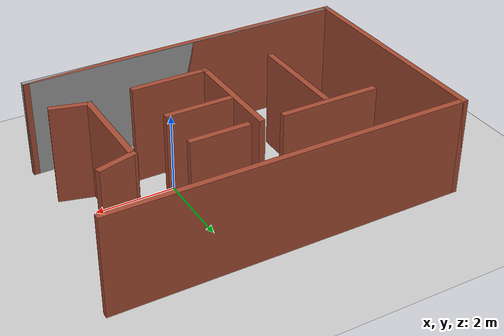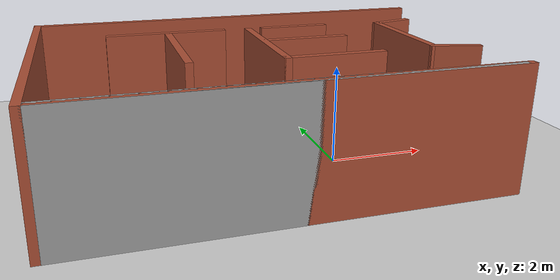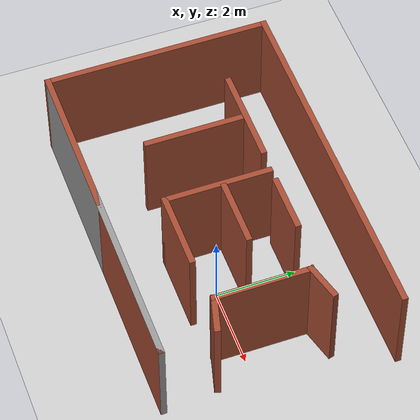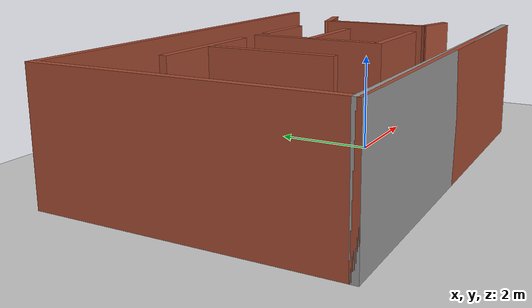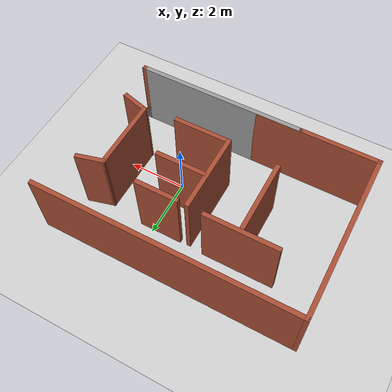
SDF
<sdf version="1.4">
<!-- Physics properties info: http://gazebosim.org/tutorials/?tut=modifying_world -->
  <world name="default">

    <scene>
      <ambient>0.4 0.4 0.4 1</ambient>
      <background>0.7 0.7 0.7 1</background>
      <shadows>true</shadows>
    </scene>

    <!-- A global light source -->
    <include>
      <uri>model://sun</uri>
    </include>

    <!-- A ground plane -->
    <include>
      <uri>model://ground_plane</uri>
    </include>

    <!-- A ground plane -->
    <include>
      <uri>model://maze</uri>
    </include>

    <physics type="ode">
      <real_time_update_rate>1000.0</real_time_update_rate>
      <max_step_size>0.001</max_step_size>
      <real_time_factor>1</real_time_factor>
      <ode>
        <solver>
          <type>quick</type>
          <iters>150</iters>
          <precon_iters>0</precon_iters>
          <sor>1.400000</sor>
          <use_dynamic_moi_rescaling>1</use_dynamic_moi_rescaling>
        </solver>
        <constraints>
          <cfm>0.00001</cfm>
          <erp>0.2</erp>
          <contact_max_correcting_vel>2000.000000</contact_max_correcting_vel>
          <contact_surface_layer>0.01000</contact_surface_layer>
        </constraints>
      </ode>
    </physics>
  </world>

</sdf>

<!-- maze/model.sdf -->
<sdf version='1.7'>
  <model name='maze'>
    <pose>-1.29099 0.5416 0 0 -0 0</pose>
    <link name='Wall_10'>
      <collision name='Wall_10_Collision'>
        <geometry>
          <box>
            <size>5.75 0.15 2.5</size>
          </box>
        </geometry>
        <pose>0 0 1.25 0 -0 0</pose>
      </collision>
      <visual name='Wall_10_Visual'>
        <pose>0 0 1.25 0 -0 0</pose>
        <geometry>
          <box>
            <size>5.75 0.15 2.5</size>
          </box>
        </geometry>
        <material>
          <script>
            <uri>file://media/materials/scripts/gazebo.material</uri>
            <name>Gazebo/Bricks</name>
          </script>
          <ambient>1 1 1 1</ambient>
        </material>
        <meta>
          <layer>0</layer>
        </meta>
      </visual>
      <pose>-4.425 -0 0 0 -0 1.5708</pose>
    </link>
    <link name='Wall_14'>
      <collision name='Wall_14_Collision'>
        <geometry>
          <box>
            <size>2.5 0.15 2.5</size>
          </box>
        </geometry>
        <pose>0 0 1.25 0 -0 0</pose>
      </collision>
      <visual name='Wall_14_Visual'>
        <pose>0 0 1.25 0 -0 0</pose>
        <geometry>
          <box>
            <size>2.5 0.15 2.5</size>
          </box>
        </geometry>
        <material>
          <script>
            <uri>file://media/materials/scripts/gazebo.material</uri>
            <name>Gazebo/Bricks</name>
          </script>
          <ambient>1 1 1 1</ambient>
        </material>
        <meta>
          <layer>0</layer>
        </meta>
      </visual>
      <pose>-1.78167 1.32968 0 0 -0 0</pose>
    </link>
    <link name='Wall_17'>
      <collision name='Wall_17_Collision'>
        <geometry>
          <box>
            <size>2.5 0.15 2.5</size>
          </box>
        </geometry>
        <pose>0 0 1.25 0 -0 0</pose>
      </collision>
      <visual name='Wall_17_Visual'>
        <pose>0 0 1.25 0 -0 0</pose>
        <geometry>
          <box>
            <size>2.5 0.15 2.5</size>
          </box>
        </geometry>
        <material>
          <script>
            <uri>file://media/materials/scripts/gazebo.material</uri>
            <name>Gazebo/Bricks</name>
          </script>
          <ambient>1 1 1 1</ambient>
        </material>
        <meta>
          <layer>0</layer>
        </meta>
      </visual>
      <pose>-1.76365 0.00173 0 0 -0 -1.5708</pose>
    </link>
    <link name='Wall_21'>
      <collision name='Wall_21_Collision'>
        <geometry>
          <box>
            <size>1.5 0.15 2.5</size>
          </box>
        </geometry>
        <pose>0 0 1.25 0 -0 0</pose>
      </collision>
      <visual name='Wall_21_Visual'>
        <pose>0 0 1.25 0 -0 0</pose>
        <geometry>
          <box>
            <size>1.5 0.15 2.5</size>
          </box>
        </geometry>
        <material>
          <script>
            <uri>file://media/materials/scripts/gazebo.material</uri>
            <name>Gazebo/Bricks</name>
          </script>
          <ambient>1 1 1 1</ambient>
        </material>
        <meta>
          <layer>0</layer>
        </meta>
      </visual>
      <pose>1.01805 1.29909 0 0 -0 3.14159</pose>
    </link>
    <link name='Wall_23'>
      <collision name='Wall_23_Collision'>
        <geometry>
          <box>
            <size>2.75 0.15 2.5</size>
          </box>
        </geometry>
        <pose>0 0 1.25 0 -0 0</pose>
      </collision>
      <visual name='Wall_23_Visual'>
        <pose>0 0 1.25 0 -0 0</pose>
        <geometry>
          <box>
            <size>2.75 0.15 2.5</size>
          </box>
        </geometry>
        <material>
          <script>
            <uri>file://media/materials/scripts/gazebo.material</uri>
            <name>Gazebo/Bricks</name>
          </script>
          <ambient>1 1 1 1</ambient>
        </material>
        <meta>
          <layer>0</layer>
        </meta>
      </visual>
      <pose>-0.020007 -0.0315 0 0 -0 -1.5708</pose>
    </link>
    <link name='Wall_24'>
      <collision name='Wall_24_Collision'>
        <geometry>
          <box>
            <size>2 0.15 2.5</size>
          </box>
        </geometry>
        <pose>0 0 1.25 0 -0 0</pose>
      </collision>
      <visual name='Wall_24_Visual'>
        <pose>0 0 1.25 0 -0 0</pose>
        <geometry>
          <box>
            <size>2 0.15 2.5</size>
          </box>
        </geometry>
        <material>
          <script>
            <uri>file://media/materials/scripts/gazebo.material</uri>
            <name>Gazebo/Bricks</name>
          </script>
          <ambient>1 1 1 1</ambient>
        </material>
        <meta>
          <layer>0</layer>
        </meta>
      </visual>
      <pose>0.904993 -1.3315 0 0 -0 0</pose>
    </link>
    <link name='Wall_26'>
      <collision name='Wall_26_Collision'>
        <geometry>
          <box>
            <size>1.75 0.15 2.5</size>
          </box>
        </geometry>
        <pose>0 0 1.25 0 -0 0</pose>
      </collision>
      <visual name='Wall_26_Visual'>
        <pose>0 0 1.25 0 -0 0</pose>
        <geometry>
          <box>
            <size>1.75 0.15 2.5</size>
          </box>
        </geometry>
        <material>
          <script>
            <uri>file://media/materials/scripts/gazebo.material</uri>
            <name>Gazebo/Bricks</name>
          </script>
          <ambient>1 1 1 1</ambient>
        </material>
        <meta>
          <layer>0</layer>
        </meta>
      </visual>
      <pose>0.871764 0.106072 0 0 -0 0</pose>
    </link>
    <link name='Wall_28'>
      <collision name='Wall_28_Collision'>
        <geometry>
          <box>
            <size>1 0.15 2.5</size>
          </box>
        </geometry>
        <pose>0 0 1.25 0 -0 0</pose>
      </collision>
      <visual name='Wall_28_Visual'>
        <pose>0 0 1.25 0 -0 0</pose>
        <geometry>
          <box>
            <size>1 0.15 2.5</size>
          </box>
        </geometry>
        <material>
          <script>
            <uri>file://media/materials/scripts/gazebo.material</uri>
            <name>Gazebo/Bricks</name>
          </script>
          <ambient>1 1 1 1</ambient>
        </material>
        <meta>
          <layer>0</layer>
        </meta>
      </visual>
      <pose>3.39325 1.25027 0 0 -0 -2.87979</pose>
    </link>
    <link name='Wall_29'>
      <collision name='Wall_29_Collision'>
        <geometry>
          <box>
            <size>2.5 0.15 2.5</size>
          </box>
        </geometry>
        <pose>0 0 1.25 0 -0 0</pose>
      </collision>
      <visual name='Wall_29_Visual'>
        <pose>0 0 1.25 0 -0 0</pose>
        <geometry>
          <box>
            <size>2.5 0.15 2.5</size>
          </box>
        </geometry>
        <material>
          <script>
            <uri>file://media/materials/scripts/gazebo.material</uri>
            <name>Gazebo/Bricks</name>
          </script>
          <ambient>1 1 1 1</ambient>
        </material>
        <meta>
          <layer>0</layer>
        </meta>
      </visual>
      <pose>2.98273 -0.034725 0 0 -0 -1.5708</pose>
    </link>
    <link name='Wall_30'>
      <collision name='Wall_30_Collision'>
        <geometry>
          <box>
            <size>1 0.15 2.5</size>
          </box>
        </geometry>
        <pose>0 0 1.25 0 -0 0</pose>
      </collision>
      <visual name='Wall_30_Visual'>
        <pose>0 0 1.25 0 -0 0</pose>
        <geometry>
          <box>
            <size>1 0.15 2.5</size>
          </box>
        </geometry>
        <material>
          <script>
            <uri>file://media/materials/scripts/gazebo.material</uri>
            <name>Gazebo/Bricks</name>
          </script>
          <ambient>1 1 1 1</ambient>
        </material>
        <meta>
          <layer>0</layer>
        </meta>
      </visual>
      <pose>3.39325 -1.31972 0 0 -0 -0.261799</pose>
    </link>
    <link name='Wall_32'>
      <collision name='Wall_32_Collision'>
        <geometry>
          <box>
            <size>9 0.15 2.5</size>
          </box>
        </geometry>
        <pose>0 0 1.25 0 -0 0</pose>
      </collision>
      <visual name='Wall_32_Visual'>
        <pose>0 0 1.25 0 -0 0</pose>
        <geometry>
          <box>
            <size>9 0.15 2.5</size>
          </box>
        </geometry>
        <material>
          <script>
            <uri>file://media/materials/scripts/gazebo.material</uri>
            <name>Gazebo/Bricks</name>
          </script>
          <ambient>1 1 1 1</ambient>
        </material>
        <meta>
          <layer>0</layer>
        </meta>
      </visual>
      <pose>0 2.8 0 0 -0 0</pose>
    </link>
    <link name='Wall_7'>
      <collision name='Wall_7_Collision'>
        <geometry>
          <box>
            <size>8.5 0.15 2.5</size>
          </box>
        </geometry>
        <pose>0 0 1.25 0 -0 0</pose>
      </collision>
      <visual name='Wall_7_Visual'>
        <pose>0 0 1.25 0 -0 0</pose>
        <geometry>
          <box>
            <size>8.5 0.15 2.5</size>
          </box>
        </geometry>
        <material>
          <script>
            <uri>file://media/materials/scripts/gazebo.material</uri>
            <name>Gazebo/Grey</name>
          </script>
          <ambient>1 1 1 1</ambient>
        </material>
        <meta>
          <layer>0</layer>
        </meta>
      </visual>
      <pose>-0.25 -2.8 0 0 -0 0</pose>
    </link>
    <link name='Wall_8'>
      <collision name='Wall_8_Collision'>
        <geometry>
          <box>
            <size>0.15 0.15 2.5</size>
          </box>
        </geometry>
        <pose>0 0 1.25 0 -0 0</pose>
      </collision>
      <visual name='Wall_8_Visual'>
        <pose>0 0 1.25 0 -0 0</pose>
        <geometry>
          <box>
            <size>0.15 0.15 2.5</size>
          </box>
        </geometry>
        <material>
          <script>
            <uri>file://media/materials/scripts/gazebo.material</uri>
            <name>Gazebo/Bricks</name>
          </script>
          <ambient>1 1 1 1</ambient>
        </material>
        <meta>
          <layer>0</layer>
        </meta>
      </visual>
      <pose>3.925 -2.8 0 0 -0 0</pose>
    </link>
    <link name='Wall_9'>
      <collision name='Wall_9_Collision'>
        <geometry>
          <box>
            <size>8.5 0.15 2.5</size>
          </box>
        </geometry>
        <pose>0 0 1.25 0 -0 0</pose>
      </collision>
      <visual name='Wall_9_Visual'>
        <pose>0 0 1.25 0 -0 0</pose>
        <geometry>
          <box>
            <size>8.5 0.15 2.5</size>
          </box>
        </geometry>
        <material>
          <script>
            <uri>file://media/materials/scripts/gazebo.material</uri>
            <name>Gazebo/Bricks</name>
          </script>
          <ambient>1 1 1 1</ambient>
        </material>
        <meta>
          <layer>0</layer>
        </meta>
      </visual>
      <pose>-0.25 -2.8 0 0 -0 3.14159</pose>
    </link>
    <static>1</static>
  </model>
</sdf>
